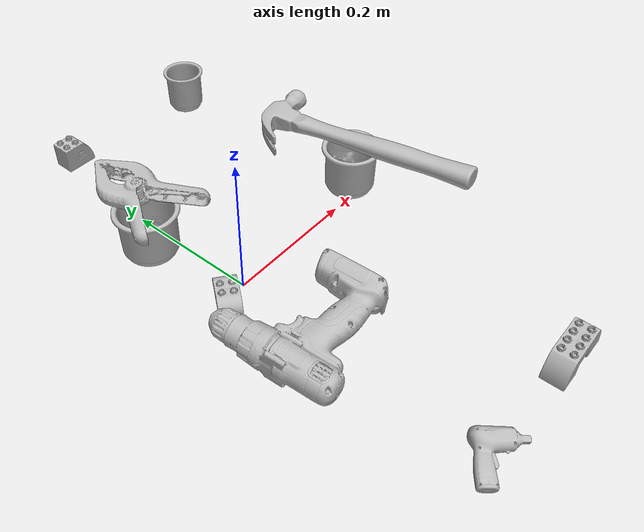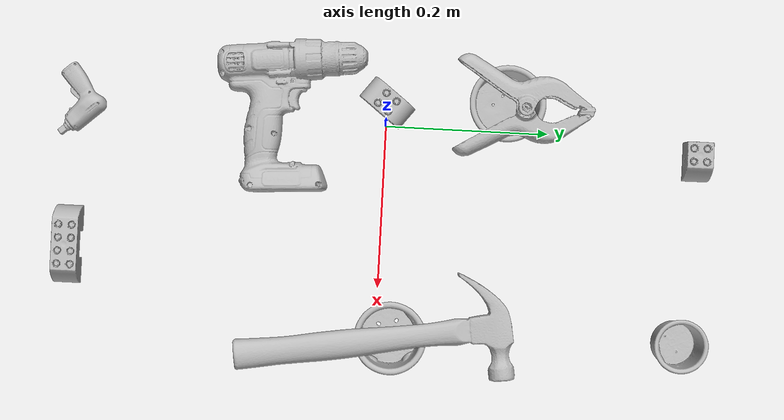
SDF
<sdf version="1.4">
  <world name="default">
    <light name="light1" type="point">
      <pose>0 0 1 0 0 0</pose>
      <diffuse>3 3 3 1</diffuse>
      <specular>3 3 3 1</specular>
    </light>
    <light name="light2" type="point">
      <pose>0 0.5 2 0 0 0</pose>
      <diffuse>1 1 1 1</diffuse>
      <specular>1 1 1 1</specular>
    </light>
    <light name="light3" type="point">
      <pose>0 0.5 2 0 0 0</pose>
      <diffuse>3 3 3 1</diffuse>
      <specular>3 3 3 1</specular>
    </light>
    <scene>
      <ambient>0.7 0.7 0.7</ambient>
    </scene>
    <model name="cup1">
      <link name="link_cup1">
        <collision name="default">
          <geometry>
            <mesh>
              <uri>model://g_cups/collision_meshes/collision.obj</uri>
              <scale>1.0 1.0 1.0</scale>
            </mesh>
          </geometry>
          <surface>
            <friction>
              <ode>
                <mu>0.5</mu>
                <mu2>0.5</mu2>
              </ode>
            </friction>
          <contact>
        <ode>
            <max_vel>0</max_vel>
            <min_depth>0.0001</min_depth>
            <kp>1e8</kp>
        </ode>
    </contact></surface>
        </collision>
        <visual name="default">
          <geometry>
            <mesh>
              <uri>model://g_cups/visual_meshes/visual.dae</uri>
              <scale>1.0 1.0 1.0</scale>
            </mesh>
          </geometry>
        </visual>
        <inertial>
          <mass>0.057625629007816315</mass>
          <pose>-0.0007946282275952399 -4.206500670989044e-05 -0.0021329375449568033 -0.21382697289054745 -0.3141031271963666 0.3112149002706268</pose>
          <inertia>
            <ixx>6.726202e-05</ixx>
            <iyy>6.7033216e-05</iyy>
            <izz>6.967186e-05</izz>
            <ixy>0</ixy>
            <ixz>0</ixz>
            <iyz>0</iyz>
          </inertia>
        </inertial>
      </link>
      <pose>0.25610458850860596 0.01781480573117733 0.0372043177485466 -4.439893896128765e-05 7.322068658493406e-05 -1.4601622444558937</pose>
    </model>
    <model name="cup2">
      <link name="link_cup2">
        <collision name="default">
          <geometry>
            <mesh>
              <uri>model://c_cups/collision_meshes/collision.obj</uri>
              <scale>1.0 1.0 1.0</scale>
            </mesh>
          </geometry>
          <surface>
            <friction>
              <ode>
                <mu>0.5</mu>
                <mu2>0.5</mu2>
              </ode>
            </friction>
          <contact>
        <ode>
            <max_vel>0</max_vel>
            <min_depth>0.0001</min_depth>
            <kp>1e8</kp>
        </ode>
    </contact></surface>
        </collision>
        <visual name="default">
          <geometry>
            <mesh>
              <uri>model://c_cups/visual_meshes/visual.dae</uri>
              <scale>1.0 1.0 1.0</scale>
            </mesh>
          </geometry>
        </visual>
        <inertial>
          <mass>0.03477548435330391</mass>
          <pose>0.0007237261161208153 0.0020153902005404234 -0.0012750983005389571 0.30215732346046187 0.013461711857135551 -0.08771879968331305</pose>
          <inertia>
            <ixx>2.5862058e-05</ixx>
            <iyy>2.540504e-05</iyy>
            <izz>2.2871589e-05</izz>
            <ixy>0</ixy>
            <ixz>0</ixz>
            <iyz>0</iyz>
          </inertia>
        </inertial>
      </link>
      <pose>0.2489107847213745 0.3668399751186371 0.033459000289440155 -2.738190981133813e-07 -6.985637385316939e-08 -3.035600349323017</pose>
    </model>
    <model name="cup3">
      <link name="link_cup3">
        <collision name="default">
          <geometry>
            <mesh>
              <uri>model://h_cups/collision_meshes/collision.obj</uri>
              <scale>1.0 1.0 1.0</scale>
            </mesh>
          </geometry>
          <surface>
            <friction>
              <ode>
                <mu>0.5</mu>
                <mu2>0.5</mu2>
              </ode>
            </friction>
          <contact>
        <ode>
            <max_vel>0</max_vel>
            <min_depth>0.0001</min_depth>
            <kp>1e8</kp>
        </ode>
    </contact></surface>
        </collision>
        <visual name="default">
          <geometry>
            <mesh>
              <uri>model://h_cups/visual_meshes/visual.dae</uri>
              <scale>1.0 1.0 1.0</scale>
            </mesh>
          </geometry>
        </visual>
        <inertial>
          <mass>0.050017159432172775</mass>
          <pose>-2.702731035242323e-05 0.0002301866770721972 -0.0018405388109385967 -0.024362003715272553 0.06545245272055236 0.12885201823743497</pose>
          <inertia>
            <ixx>6.459484e-05</ixx>
            <iyy>6.382401e-05</iyy>
            <izz>6.774227e-05</izz>
            <ixy>0</ixy>
            <ixz>0</ixz>
            <iyz>0</iyz>
          </inertia>
        </inertial>
      </link>
      <pose>-0.03085307590663433 0.14417746663093567 0.03776106983423233 -0.0002148054668805421 4.273555394188153e-05 0.699262728039259</pose>
    </model>
    <model name="toy1">
      <link name="link_toy1">
        <collision name="default">
          <geometry>
            <mesh>
              <uri>model://e_lego_duplo/collision_meshes/collision.obj</uri>
              <scale>1.0 1.0 1.0</scale>
            </mesh>
          </geometry>
          <surface>
            <friction>
              <ode>
                <mu>0.5</mu>
                <mu2>0.5</mu2>
              </ode>
            </friction>
          <contact>
        <ode>
            <max_vel>0</max_vel>
            <min_depth>0.0001</min_depth>
            <kp>1e8</kp>
        </ode>
    </contact></surface>
        </collision>
        <visual name="default">
          <geometry>
            <mesh>
              <uri>model://e_lego_duplo/visual_meshes/visual.dae</uri>
              <scale>1.0 1.0 1.0</scale>
            </mesh>
          </geometry>
        </visual>
        <inertial>
          <mass>0.09100330621004105</mass>
          <pose>0.0003256048948969692 0.00023485418932978064 0.0019521461799740791 -0.02256778535698338 -6.825395529084007e-05 -0.0076251622764869605</pose>
          <inertia>
            <ixx>1.897719e-05</ixx>
            <iyy>7.788726e-05</iyy>
            <izz>7.584653e-05</izz>
            <ixy>0</ixy>
            <ixz>0</ixz>
            <iyz>0</iyz>
          </inertia>
        </inertial>
      </link>
      <pose>0.16474366188049316 -0.38296768069267273 0.02180899865925312 2.515968247168271e-07 -3.808059701373972e-08 0.004901307529552171</pose>
    </model>
    <model name="toy2">
      <link name="link_toy2">
        <collision name="default">
          <geometry>
            <mesh>
              <uri>model://b_toy_airplane/collision_meshes/collision.obj</uri>
              <scale>0.5 0.5 0.5</scale>
            </mesh>
          </geometry>
          <surface>
            <friction>
              <ode>
                <mu>0.5</mu>
                <mu2>0.5</mu2>
              </ode>
            </friction>
          <contact>
        <ode>
            <max_vel>0</max_vel>
            <min_depth>0.0001</min_depth>
            <kp>1e8</kp>
        </ode>
    </contact></surface>
        </collision>
        <visual name="default">
          <geometry>
            <mesh>
              <uri>model://b_toy_airplane/visual_meshes/visual.dae</uri>
              <scale>0.5 0.5 0.5</scale>
            </mesh>
          </geometry>
        </visual>
        <inertial>
          <mass>0.06363805383443832</mass>
          <pose>0.002540681976824999 0.0020077931694686413 0.004771532956510782 -0.0400181041712346 -0.04022185546555606 -0.5601502891427816</pose>
          <inertia>
            <ixx>2.9536302e-05</ixx>
            <iyy>1.1805946e-05</iyy>
            <izz>3.6746103e-05</izz>
            <ixy>0</ixy>
            <ixz>0</ixz>
            <iyz>0</iyz>
          </inertia>
        </inertial>
      </link>
      <pose>-0.013260230422019958 -0.37175416946411133 0.008488936349749565 0.1848764156571536 0.11349890050599186 -0.854718195252049</pose>
    </model>
    <model name="toy3">
      <link name="link_toy3">
        <collision name="default">
          <geometry>
            <mesh>
              <uri>model://d_lego_duplo/collision_meshes/collision.obj</uri>
              <scale>1.0 1.0 1.0</scale>
            </mesh>
          </geometry>
          <surface>
            <friction>
              <ode>
                <mu>0.5</mu>
                <mu2>0.5</mu2>
              </ode>
            </friction>
          <contact>
        <ode>
            <max_vel>0</max_vel>
            <min_depth>0.0001</min_depth>
            <kp>1e8</kp>
        </ode>
    </contact></surface>
        </collision>
        <visual name="default">
          <geometry>
            <mesh>
              <uri>model://d_lego_duplo/visual_meshes/visual.dae</uri>
              <scale>1.0 1.0 1.0</scale>
            </mesh>
          </geometry>
        </visual>
        <inertial>
          <mass>0.05334000289440155</mass>
          <pose>0.002830563811585307 0.0001636617089388892 0.0008589810458943248 0.0801090676593232 -0.3835525121717052 0.0010296416750687279</pose>
          <inertia>
            <ixx>1.0325837e-05</ixx>
            <iyy>1.4655165e-05</iyy>
            <izz>1.4132847e-05</izz>
            <ixy>0</ixy>
            <ixz>0</ixz>
            <iyz>0</iyz>
          </inertia>
        </inertial>
      </link>
      <pose>0.02509116381406784 0.38374063372612 0.021739795804023743 -2.729370664532408e-05 -1.7479468056854239e-07 -3.132562679955711</pose>
    </model>
    <model name="toy4">
      <link name="link_toy4">
        <collision name="default">
          <geometry>
            <mesh>
              <uri>model://a_lego_duplo/collision_meshes/collision.obj</uri>
              <scale>1.0 1.0 1.0</scale>
            </mesh>
          </geometry>
          <surface>
            <friction>
              <ode>
                <mu>0.5</mu>
                <mu2>0.5</mu2>
              </ode>
            </friction>
          <contact>
        <ode>
            <max_vel>0</max_vel>
            <min_depth>0.0001</min_depth>
            <kp>1e8</kp>
        </ode>
    </contact></surface>
        </collision>
        <visual name="default">
          <geometry>
            <mesh>
              <uri>model://a_lego_duplo/visual_meshes/visual.dae</uri>
              <scale>1.0 1.0 1.0</scale>
            </mesh>
          </geometry>
        </visual>
        <inertial>
          <mass>0.02371947281062603</mass>
          <pose>-0.00011337659088894725 0.00018517536227591336 0.00036926098982803524 -0.014117032318495473 -0.00012566219654468525 6.139472672246545e-05</pose>
          <inertia>
            <ixx>3.0410272e-06</ixx>
            <iyy>6.8125664e-06</iyy>
            <izz>8.438875e-06</izz>
            <ixy>0</ixy>
            <ixz>0</ixz>
            <iyz>0</iyz>
          </inertia>
        </inertial>
      </link>
      <pose>-0.02893194556236267 0.0005513167125172913 0.012111985124647617 7.813005151615658e-07 -5.541201105402731e-07 0.9166441972654391</pose>
    </model>
    <model name="hardware1">
      <link name="link_hardware1">
        <collision name="default">
          <geometry>
            <mesh>
              <uri>model://hammer/collision_meshes/collision.obj</uri>
              <scale>1.0 1.0 1.0</scale>
            </mesh>
          </geometry>
          <surface>
            <friction>
              <ode>
                <mu>0.5</mu>
                <mu2>0.5</mu2>
              </ode>
            </friction>
          <contact>
        <ode>
            <max_vel>0</max_vel>
            <min_depth>0.0001</min_depth>
            <kp>1e8</kp>
        </ode>
    </contact></surface>
        </collision>
        <visual name="default">
          <geometry>
            <mesh>
              <uri>model://hammer/visual_meshes/visual.dae</uri>
              <scale>1.0 1.0 1.0</scale>
            </mesh>
          </geometry>
        </visual>
        <inertial>
          <mass>0.21542595326900482</mass>
          <pose>0.009415775537490845 -0.011892358772456646 -0.00012350629549473524 0.02315578421630864 -0.004792165572519315 -0.012760317567756519</pose>
          <inertia>
            <ixx>9.2278024e-05</ixx>
            <iyy>0.0025004656</iyy>
            <izz>0.002572105</izz>
            <ixy>0</ixy>
            <ixz>0</ixz>
            <iyz>0</iyz>
          </inertia>
        </inertial>
      </link>
      <pose>0.24611987173557281 0.008044645190238953 0.08629843592643738 -0.001094035307950479 0.04204861871366603 1.7164917809667444</pose>
    </model>
    <model name="hardware2">
      <link name="link_hardware2">
        <collision name="default">
          <geometry>
            <mesh>
              <uri>model://large_clamp/collision_meshes/collision.obj</uri>
              <scale>1.0 1.0 1.0</scale>
            </mesh>
          </geometry>
          <surface>
            <friction>
              <ode>
                <mu>0.5</mu>
                <mu2>0.5</mu2>
              </ode>
            </friction>
          <contact>
        <ode>
            <max_vel>0</max_vel>
            <min_depth>0.0001</min_depth>
            <kp>1e8</kp>
        </ode>
    </contact></surface>
        </collision>
        <visual name="default">
          <geometry>
            <mesh>
              <uri>model://large_clamp/visual_meshes/visual.dae</uri>
              <scale>1.0 1.0 1.0</scale>
            </mesh>
          </geometry>
        </visual>
        <inertial>
          <mass>0.16898278892040253</mass>
          <pose>0.006369357462972403 0.00035856629256159067 -0.00018398034444544464 -0.002133075920149734 0.009671594117503977 0.026633212091596442</pose>
          <inertia>
            <ixx>0.00014908903</ixx>
            <iyy>0.00028312797</iyy>
            <izz>0.00040958088</izz>
            <ixy>0</ixy>
            <ixz>0</ixz>
            <iyz>0</iyz>
          </inertia>
        </inertial>
      </link>
      <pose>-0.02479092963039875 0.163237527012825 0.08840297162532806 0.021103757746903012 -0.014058580477490994 1.5334547755151215</pose>
    </model>
    <model name="hardware3">
      <link name="link_hardware3">
        <collision name="default">
          <geometry>
            <mesh>
              <uri>model://power_drill/collision_meshes/collision.obj</uri>
              <scale>1.0 1.0 1.0</scale>
            </mesh>
          </geometry>
          <surface>
            <friction>
              <ode>
                <mu>0.5</mu>
                <mu2>0.5</mu2>
              </ode>
            </friction>
          <contact>
        <ode>
            <max_vel>0</max_vel>
            <min_depth>0.0001</min_depth>
            <kp>1e8</kp>
        </ode>
    </contact></surface>
        </collision>
        <visual name="default">
          <geometry>
            <mesh>
              <uri>model://power_drill/visual_meshes/visual.dae</uri>
              <scale>1.0 1.0 1.0</scale>
            </mesh>
          </geometry>
        </visual>
        <inertial>
          <mass>0.7224003672599792</mass>
          <pose>-0.014780545607209206 0.014369428157806396 0.0012414171360433102 0.0046091635101465946 0.00407302394444766 -0.18362692290061644</pose>
          <inertia>
            <ixx>0.002943816</ixx>
            <iyy>0.0011582379</iyy>
            <izz>0.0038878287</izz>
            <ixy>0</ixy>
            <ixz>0</ixz>
            <iyz>0</iyz>
          </inertia>
        </inertial>
      </link>
      <pose>-0.006208403035998344 -0.11183172464370728 0.027312440797686577 -0.030306032365017076 -0.047252870171040795 1.6527635106651826</pose>
    </model>
  <physics type="ode">
      <max_contacts>50</max_contacts>
      <ode>
        <solver>
          <type>quick</type>
          <iters>75</iters>
        </solver>
        <constraints>
          <contact_max_correcting_vel>0</contact_max_correcting_vel>
          <contact_surface_layer>0</contact_surface_layer>
        </constraints>
      </ode>
    </physics></world>
</sdf>
